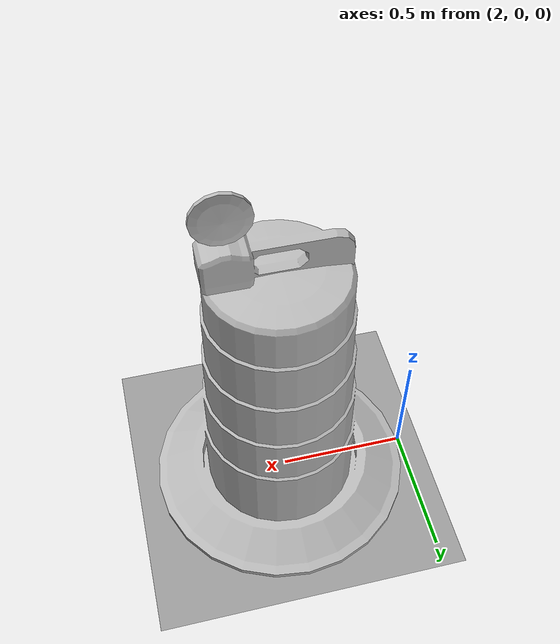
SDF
<sdf version="1.4">
 <world name="default">
  <light name="sun" type="directional">
   <pose>0 0 10 0 -0 0</pose>
   <diffuse>0.8 0.8 0.8 1</diffuse>
   <specular>0.2 0.2 0.2 1</specular>
   <attenuation>
    <range>1000</range>
    <constant>0.9</constant>
    <linear>0.01</linear>
    <quadratic>0.001</quadratic>
   </attenuation>
   <direction>0.5 0.1 -0.9</direction>
  </light>
  <scene><ambient>0.4 0.4 0.4 1</ambient><background>0.7 0.7 0.7 1</background><shadows>1</shadows></scene>
  <physics type="ode">
   <max_step_size>0.01</max_step_size>
   <real_time_factor>1</real_time_factor>
   <real_time_update_rate>100</real_time_update_rate>
   <gravity>0 0 -9.8</gravity>
  </physics>
  <model name="ground_plane_0">
   <static>1</static>
   <link name="link">
    <collision name="collision">
     <geometry><plane><normal>0 0 1</normal><size>100 100</size></plane></geometry>
     <surface><friction><ode><mu>100</mu><mu2>50</mu2></ode></friction></surface>
    </collision>
    <visual name="visual">
     <cast_shadows>0</cast_shadows>
     <geometry><plane><normal>0 0 1</normal><size>100 100</size></plane></geometry>
     <material>
      <script><uri>file://media/materials/scripts/gazebo.material</uri><name>Gazebo/Grey</name></script>
     </material>
    </visual>
    <velocity_decay><linear>0</linear><angular>0</angular></velocity_decay>
   </link>
   <pose>0.497681 0 0 0 -0 0</pose>
  </model>
  <spherical_coordinates>
   <surface_model>EARTH_WGS84</surface_model>
   <latitude_deg>0</latitude_deg>
   <longitude_deg>0</longitude_deg>
   <elevation>0</elevation>
   <heading_deg>0</heading_deg>
  </spherical_coordinates>
  <model name="Construction Barrel">
   <link name="link">
    <inertial>
     <pose>0 0 0.4 0 -0 0</pose>
     <mass>500</mass>
     <inertia><ixx>51.2096</ixx><iyy>51.2096</iyy><izz>25</izz><ixy>0</ixy><ixz>0</ixz><iyz>0</iyz></inertia>
    </inertial>
    <collision name="collision">
     <geometry><mesh><uri>model://construction_barrel/meshes/construction_barrel.dae</uri></mesh></geometry>
    </collision>
    <visual name="visual">
     <geometry><mesh><uri>model://construction_barrel/meshes/construction_barrel.dae</uri></mesh></geometry>
    </visual>
    <velocity_decay><linear>0</linear><angular>0</angular></velocity_decay>
   </link>
   <pose>2.52361 0.000143 -9.1e-05 0.00031 0.000179 -0.000263</pose>
   <static>0</static>
  </model>
 </world>
</sdf>
